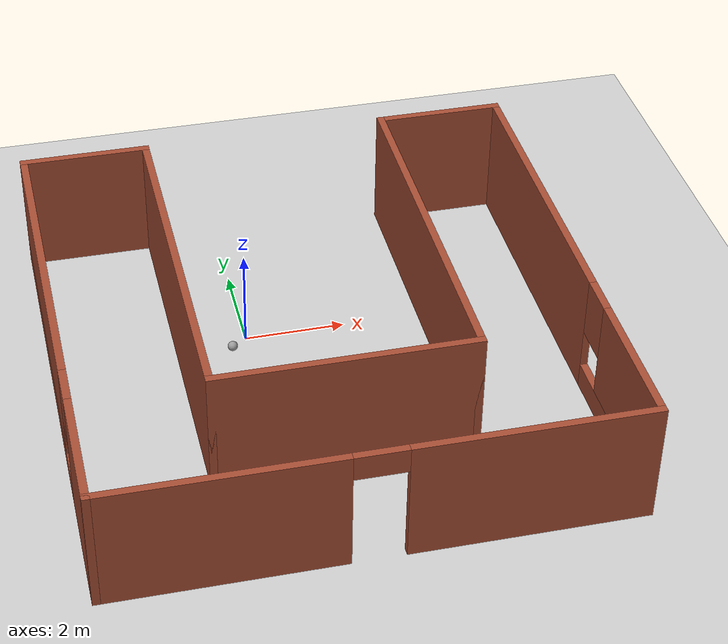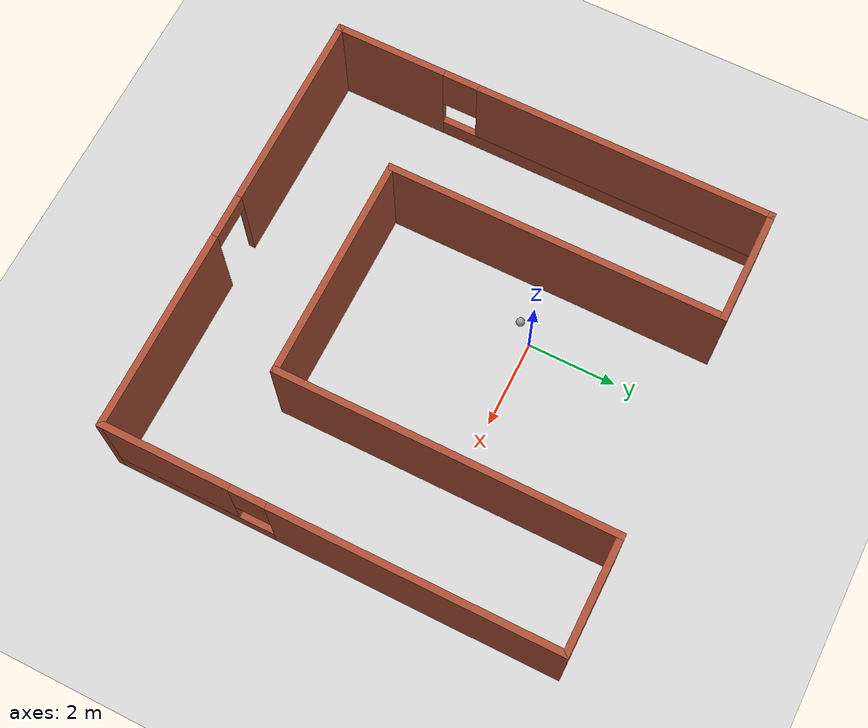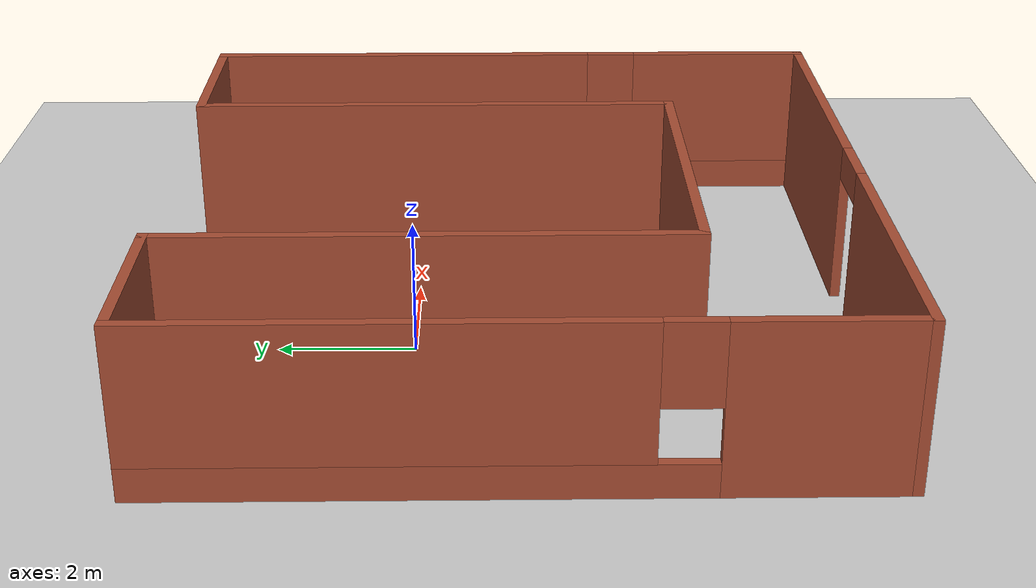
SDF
<sdf version="1.6">
 <world name="default">
  <light name="sun" type="directional">
   <pose>0 0 10 0 -0 0</pose>
   <diffuse>0.8 0.8 0.8 1</diffuse>
   <specular>0.1 0.1 0.1 1</specular>
   <attenuation>
    <range>1000</range>
    <constant>0.9</constant>
    <linear>0.01</linear>
    <quadratic>0.001</quadratic>
   </attenuation>
   <direction>-0.5 0.5 -1</direction>
  </light>
  <model name="ground_plane">
   <static>1</static>
   <link name="link">
    <collision name="collision">
     <geometry><plane><normal>0 0 1</normal><size>100 100</size></plane></geometry>
     <surface><friction><ode><mu>100</mu><mu2>50</mu2></ode></friction></surface>
    </collision>
    <visual name="visual">
     <cast_shadows>0</cast_shadows>
     <geometry><plane><normal>0 0 1</normal><size>100 100</size></plane></geometry>
     <material>
      <script><uri>file://media/materials/scripts/gazebo.material</uri><name>Gazebo/Grey</name></script>
     </material>
    </visual>
   </link>
  </model>
  <gravity>0 0 -9.8</gravity>
  <magnetic_field>6e-06 2.3e-05 -4.2e-05</magnetic_field>
  <atmosphere type="adiabatic"/>
  <physics name="default_physics" default="0" type="ode">
   <max_step_size>0.001</max_step_size>
   <real_time_factor>1</real_time_factor>
   <real_time_update_rate>1000</real_time_update_rate>
  </physics>
  <scene><ambient>0.4 0.4 0.4 1</ambient><background>0.7 0.7 0.7 1</background><shadows>1</shadows></scene>
  <spherical_coordinates>
   <surface_model>EARTH_WGS84</surface_model>
   <latitude_deg>0</latitude_deg>
   <longitude_deg>0</longitude_deg>
   <elevation>0</elevation>
   <heading_deg>0</heading_deg>
  </spherical_coordinates>
  <model name="my_ball_0">
   <link name="link_0">
    <inertial>
     <mass>1</mass>
     <inertia><ixx>0.1</ixx><ixy>0</ixy><ixz>0</ixz><iyy>0.1</iyy><iyz>0</iyz><izz>0.1</izz></inertia>
    </inertial>
    <visual name="visual">
     <geometry><sphere><radius>0.1</radius></sphere></geometry>
     <material>
      <lighting>1</lighting>
      <script><uri>file://media/materials/scripts/gazebo.material</uri><name>Gazebo/Grey</name></script>
      <ambient>1 1 1 1</ambient>
      <diffuse>1 1 1 1</diffuse>
      <specular>1 1 1 1</specular>
      <emissive>1 1 1 1</emissive>
      <shader type="vertex"><normal_map>__default__</normal_map></shader>
     </material>
    </visual>
    <collision name="collision">
     <geometry><sphere><radius>0.1</radius></sphere></geometry>
     <surface>
      <friction>
       <ode><mu>1</mu><mu2>1</mu2><fdir1>0 0 0</fdir1><slip1>0</slip1><slip2>0</slip2></ode>
       <torsional>
        <coefficient>1</coefficient>
        <patch_radius>0</patch_radius>
        <surface_radius>0</surface_radius>
        <use_patch_radius>1</use_patch_radius>
        <ode><slip>0</slip></ode>
       </torsional>
      </friction>
      <bounce><restitution_coefficient>0</restitution_coefficient><threshold>1e+06</threshold></bounce>
      <contact>
       <collide_without_contact>0</collide_without_contact>
       <collide_without_contact_bitmask>1</collide_without_contact_bitmask>
       <collide_bitmask>1</collide_bitmask>
       <ode>
        <soft_cfm>0</soft_cfm>
        <soft_erp>0.2</soft_erp>
        <kp>1e+13</kp>
        <kd>1</kd>
        <max_vel>0.01</max_vel>
        <min_depth>0</min_depth>
       </ode>
       <bullet>
        <split_impulse>1</split_impulse>
        <split_impulse_penetration_threshold>-0.01</split_impulse_penetration_threshold>
        <soft_cfm>0</soft_cfm>
        <soft_erp>0.2</soft_erp>
        <kp>1e+13</kp>
        <kd>1</kd>
       </bullet>
      </contact>
     </surface>
    </collision>
   </link>
   <static>0</static>
   <pose>-0.340257 -0.382412 0.167062 0 -0 0</pose>
  </model>
  <model name="prj1_building">
   <pose>1.12498 -1.47552 0 0 -0 0</pose>
   <link name="Wall_0">
    <pose>-5 0 0 0 -0 1.5708</pose>
    <visual name="Wall_0_Visual_0">
     <pose>-3.7875 0 1.25 0 -0 0</pose>
     <geometry><box><size>2.575 0.15 2.5</size></box></geometry>
     <material>
      <script><uri>file://media/materials/scripts/gazebo.material</uri><name>Gazebo/Bricks</name></script>
      <ambient>0.996078 0.47451 0.0196078 1</ambient>
     </material>
     <meta><layer>0</layer></meta>
    </visual>
    <collision name="Wall_0_Collision_0">
     <geometry><box><size>2.575 0.15 2.5</size></box></geometry>
     <pose>-3.7875 0 1.25 0 -0 0</pose>
    </collision>
    <visual name="Wall_0_Visual_1">
     <pose>1.2875 0 0.25 0 -0 0</pose>
     <geometry><box><size>7.575 0.15 0.5</size></box></geometry>
     <material>
      <script><uri>file://media/materials/scripts/gazebo.material</uri><name>Gazebo/Bricks</name></script>
      <ambient>0.996078 0.47451 0.0196078 1</ambient>
     </material>
     <meta><layer>0</layer></meta>
    </visual>
    <collision name="Wall_0_Collision_1">
     <geometry><box><size>7.575 0.15 0.5</size></box></geometry>
     <pose>1.2875 0 0.25 0 -0 0</pose>
    </collision>
    <visual name="Wall_0_Visual_2">
     <pose>1.6875 0 1.5 0 -0 0</pose>
     <geometry><box><size>6.775 0.15 2</size></box></geometry>
     <material>
      <script><uri>file://media/materials/scripts/gazebo.material</uri><name>Gazebo/Bricks</name></script>
      <ambient>0.996078 0.47451 0.0196078 1</ambient>
     </material>
     <meta><layer>0</layer></meta>
    </visual>
    <collision name="Wall_0_Collision_2">
     <geometry><box><size>6.775 0.15 2</size></box></geometry>
     <pose>1.6875 0 1.5 0 -0 0</pose>
    </collision>
    <visual name="Wall_0_Visual_3">
     <pose>-2.1 0 1.9 0 -0 0</pose>
     <geometry><box><size>0.8 0.15 1.2</size></box></geometry>
     <material>
      <script><uri>file://media/materials/scripts/gazebo.material</uri><name>Gazebo/Bricks</name></script>
      <ambient>0.996078 0.47451 0.0196078 1</ambient>
     </material>
     <meta><layer>0</layer></meta>
    </visual>
    <collision name="Wall_0_Collision_3">
     <geometry><box><size>0.8 0.15 1.2</size></box></geometry>
     <pose>-2.1 0 1.9 0 -0 0</pose>
    </collision>
   </link>
   <link name="Wall_1">
    <collision name="Wall_1_Collision">
     <geometry><box><size>2.65 0.15 2.5</size></box></geometry>
     <pose>0 0 1.25 0 -0 0</pose>
    </collision>
    <visual name="Wall_1_Visual">
     <pose>0 0 1.25 0 -0 0</pose>
     <geometry><box><size>2.65 0.15 2.5</size></box></geometry>
     <material>
      <script><uri>file://media/materials/scripts/gazebo.material</uri><name>Gazebo/Bricks</name></script>
      <ambient>0.996078 0.47451 0.0196078 1</ambient>
     </material>
     <meta><layer>0</layer></meta>
    </visual>
    <pose>-3.75 5 0 0 -0 0</pose>
   </link>
   <link name="Wall_2">
    <collision name="Wall_2_Collision">
     <geometry><box><size>7.65 0.15 2.5</size></box></geometry>
     <pose>0 0 1.25 0 -0 0</pose>
    </collision>
    <visual name="Wall_2_Visual">
     <pose>0 0 1.25 0 -0 0</pose>
     <geometry><box><size>7.65 0.15 2.5</size></box></geometry>
     <material>
      <script><uri>file://media/materials/scripts/gazebo.material</uri><name>Gazebo/Bricks</name></script>
      <ambient>0.996078 0.47451 0.0196078 1</ambient>
     </material>
     <meta><layer>0</layer></meta>
    </visual>
    <pose>-2.5 1.25 0 0 0 -1.5708</pose>
   </link>
   <link name="Wall_3">
    <collision name="Wall_3_Collision">
     <geometry><box><size>5.15 0.15 2.5</size></box></geometry>
     <pose>0 0 1.25 0 -0 0</pose>
    </collision>
    <visual name="Wall_3_Visual">
     <pose>0 0 1.25 0 -0 0</pose>
     <geometry><box><size>5.15 0.15 2.5</size></box></geometry>
     <material>
      <script><uri>file://media/materials/scripts/gazebo.material</uri><name>Gazebo/Bricks</name></script>
      <ambient>0.996078 0.47451 0.0196078 1</ambient>
     </material>
     <meta><layer>0</layer></meta>
    </visual>
    <pose>0 -2.5 0 0 -0 0</pose>
   </link>
   <link name="Wall_4">
    <collision name="Wall_4_Collision">
     <geometry><box><size>7.65 0.15 2.5</size></box></geometry>
     <pose>0 0 1.25 0 -0 0</pose>
    </collision>
    <visual name="Wall_4_Visual">
     <pose>0 0 1.25 0 -0 0</pose>
     <geometry><box><size>7.65 0.15 2.5</size></box></geometry>
     <material>
      <script><uri>file://media/materials/scripts/gazebo.material</uri><name>Gazebo/Bricks</name></script>
      <ambient>0.996078 0.47451 0.0196078 1</ambient>
     </material>
     <meta><layer>0</layer></meta>
    </visual>
    <pose>2.5 1.25 0 0 -0 1.5708</pose>
   </link>
   <link name="Wall_5">
    <collision name="Wall_5_Collision">
     <geometry><box><size>2.65 0.15 2.5</size></box></geometry>
     <pose>0 0 1.25 0 -0 0</pose>
    </collision>
    <visual name="Wall_5_Visual">
     <pose>0 0 1.25 0 -0 0</pose>
     <geometry><box><size>2.65 0.15 2.5</size></box></geometry>
     <material>
      <script><uri>file://media/materials/scripts/gazebo.material</uri><name>Gazebo/Bricks</name></script>
      <ambient>0.996078 0.47451 0.0196078 1</ambient>
     </material>
     <meta><layer>0</layer></meta>
    </visual>
    <pose>3.75 5 0 0 -0 0</pose>
   </link>
   <link name="Wall_6">
    <pose>5 0 0 0 0 -1.5708</pose>
    <visual name="Wall_6_Visual_0">
     <pose>-1.8725 0 1.25 0 -0 0</pose>
     <geometry><box><size>6.405 0.15 2.5</size></box></geometry>
     <material>
      <script><uri>file://media/materials/scripts/gazebo.material</uri><name>Gazebo/Bricks</name></script>
      <ambient>0.996078 0.47451 0.0196078 1</ambient>
     </material>
     <meta><layer>0</layer></meta>
    </visual>
    <collision name="Wall_6_Collision_0">
     <geometry><box><size>6.405 0.15 2.5</size></box></geometry>
     <pose>-1.8725 0 1.25 0 -0 0</pose>
    </collision>
    <visual name="Wall_6_Visual_1">
     <pose>3.2025 0 0.25 0 -0 0</pose>
     <geometry><box><size>3.745 0.15 0.5</size></box></geometry>
     <material>
      <script><uri>file://media/materials/scripts/gazebo.material</uri><name>Gazebo/Bricks</name></script>
      <ambient>0.996078 0.47451 0.0196078 1</ambient>
     </material>
     <meta><layer>0</layer></meta>
    </visual>
    <collision name="Wall_6_Collision_1">
     <geometry><box><size>3.745 0.15 0.5</size></box></geometry>
     <pose>3.2025 0 0.25 0 -0 0</pose>
    </collision>
    <visual name="Wall_6_Visual_2">
     <pose>3.6025 0 1.5 0 -0 0</pose>
     <geometry><box><size>2.945 0.15 2</size></box></geometry>
     <material>
      <script><uri>file://media/materials/scripts/gazebo.material</uri><name>Gazebo/Bricks</name></script>
      <ambient>0.996078 0.47451 0.0196078 1</ambient>
     </material>
     <meta><layer>0</layer></meta>
    </visual>
    <collision name="Wall_6_Collision_2">
     <geometry><box><size>2.945 0.15 2</size></box></geometry>
     <pose>3.6025 0 1.5 0 -0 0</pose>
    </collision>
    <visual name="Wall_6_Visual_3">
     <pose>1.73 0 1.9 0 -0 0</pose>
     <geometry><box><size>0.8 0.15 1.2</size></box></geometry>
     <material>
      <script><uri>file://media/materials/scripts/gazebo.material</uri><name>Gazebo/Bricks</name></script>
      <ambient>0.996078 0.47451 0.0196078 1</ambient>
     </material>
     <meta><layer>0</layer></meta>
    </visual>
    <collision name="Wall_6_Collision_3">
     <geometry><box><size>0.8 0.15 1.2</size></box></geometry>
     <pose>1.73 0 1.9 0 -0 0</pose>
    </collision>
   </link>
   <link name="Wall_7">
    <pose>0 -5 0 0 -0 3.14159</pose>
    <visual name="Wall_7_Visual_0">
     <pose>-2.7875 0 1.25 0 -0 0</pose>
     <geometry><box><size>4.575 0.15 2.5</size></box></geometry>
     <material>
      <script><uri>file://media/materials/scripts/gazebo.material</uri><name>Gazebo/Bricks</name></script>
      <ambient>0.996078 0.47451 0.0196078 1</ambient>
     </material>
     <meta><layer>0</layer></meta>
    </visual>
    <collision name="Wall_7_Collision_0">
     <geometry><box><size>4.575 0.15 2.5</size></box></geometry>
     <pose>-2.7875 0 1.25 0 -0 0</pose>
    </collision>
    <visual name="Wall_7_Visual_1">
     <pose>2.7875 0 1.25 0 -0 0</pose>
     <geometry><box><size>4.575 0.15 2.5</size></box></geometry>
     <material>
      <script><uri>file://media/materials/scripts/gazebo.material</uri><name>Gazebo/Bricks</name></script>
      <ambient>0.996078 0.47451 0.0196078 1</ambient>
     </material>
     <meta><layer>0</layer></meta>
    </visual>
    <collision name="Wall_7_Collision_1">
     <geometry><box><size>4.575 0.15 2.5</size></box></geometry>
     <pose>2.7875 0 1.25 0 -0 0</pose>
    </collision>
    <visual name="Wall_7_Visual_2">
     <pose>0 0 2.25 0 -0 0</pose>
     <geometry><box><size>1 0.15 0.5</size></box></geometry>
     <material>
      <script><uri>file://media/materials/scripts/gazebo.material</uri><name>Gazebo/Bricks</name></script>
      <ambient>0.996078 0.47451 0.0196078 1</ambient>
     </material>
     <meta><layer>0</layer></meta>
    </visual>
    <collision name="Wall_7_Collision_2">
     <geometry><box><size>1 0.15 0.5</size></box></geometry>
     <pose>0 0 2.25 0 -0 0</pose>
    </collision>
   </link>
   <static>1</static>
  </model>
 </world>
</sdf>
